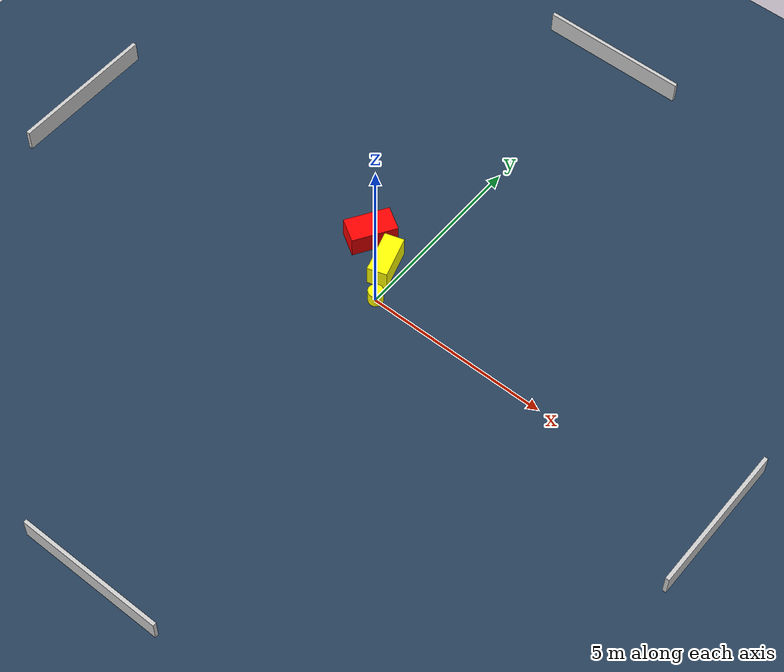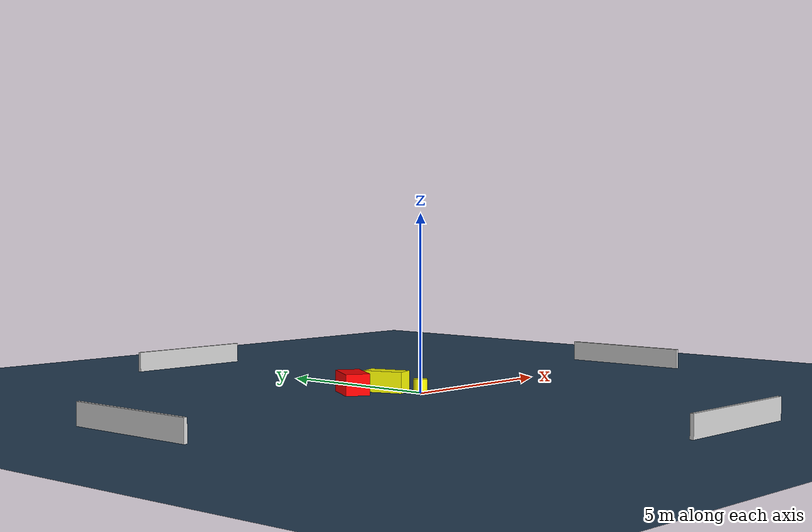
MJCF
<?xml version="1.0" ?>
<mujoco model="generated_environment">
  <option timestep="0.01" integrator="RK4" cone="elliptic"/>
  <default>
    <geom density="1"/>
  </default>
  <asset>
    <texture builtin="gradient" height="3072" name="skybox" rgb1="0.3 0.5 0.7" rgb2="0 0 0" type="skybox" width="512"/>
    <texture builtin="checker" height="300" name="groundplane" rgb1="0.2 0.3 0.4" rgb2="0.1 0.2 0.3" type="2d" width="300"/>
    <material name="groundplane" reflectance="0.2" texrepeat="5 5" texture="groundplane"/>
  </asset>
  <worldbody>
    <light dir="0 0 -1" directional="true" pos="0 0 1.5"/>
    <geom condim="3" friction="0.5 0.005 0.001" material="groundplane" name="floor" pos="0 0 0" size="0 0 0.05" type="plane"/>
    <body name="walls">
      <geom name="wall_1" condim="4" pos="-10.0 0.0 0.3" rgba="0.800000011920929 0.800000011920929 0.800000011920929 1.0" size="0.05 2.0 0.3" type="box"/>
      <geom name="wall_2" condim="4" pos="10.0 0.0 0.3" rgba="0.800000011920929 0.800000011920929 0.800000011920929 1.0" size="0.05 2.0 0.3" type="box"/>
      <geom name="wall_3" condim="4" pos="0.0 -10.0 0.3" rgba="0.800000011920929 0.800000011920929 0.800000011920929 1.0" size="2.0 0.05 0.3" type="box"/>
      <geom name="wall_4" condim="4" pos="0.0 10.0 0.3" rgba="0.800000011920929 0.800000011920929 0.800000011920929 1.0" size="2.0 0.05 0.3" type="box"/>
    </body>
    <body name="robot">
      <joint name="joint_x" type="slide" pos="0 0 0" axis="1 0 0"/>
      <joint name="joint_y" type="slide" pos="0 0 0" axis="0 1 0"/>
      <geom name="robot" type="cylinder" pos="0.0 0.0 0.2" size="0.2 0.2 0.0" mass="5.0" friction="1.0 0.005 0.0001" condim="4" rgba="1.0 1.0 0.0 1.0"/>
    </body>
    <body name="obstacle_1_movable">
      <geom name="obstacle_1_movable" condim="4" pos="-0.4232421715944891 0.9066514215097 0.3" euler="0 0 107.0900378564003" friction="0.0 0.005 0.001" rgba="1.0 1.0 0.0 1.0" size="0.583010492205312 0.26436792088833044 0.3" type="box" mass="0.1"/>
      <joint type="free"/>
    </body>
    <body name="obstacle_2_static">
      <geom name="obstacle_2_static" condim="4" pos="-1.2950579520913459 1.3767894631744597 0.3" euler="0 0 58.19213516625676" friction="0.0 0.005 0.001" rgba="1.0 0.0 0.0 1.0" size="0.6129873528454552 0.34439952733596274 0.3" type="box"/>
    </body>
  </worldbody>
  <actuator>
    <motor name="actuator_x" joint="joint_x" gear="1" ctrlrange="-1 1"/>
    <motor name="actuator_y" joint="joint_y" gear="1" ctrlrange="-1 1"/>
  </actuator>
</mujoco>
